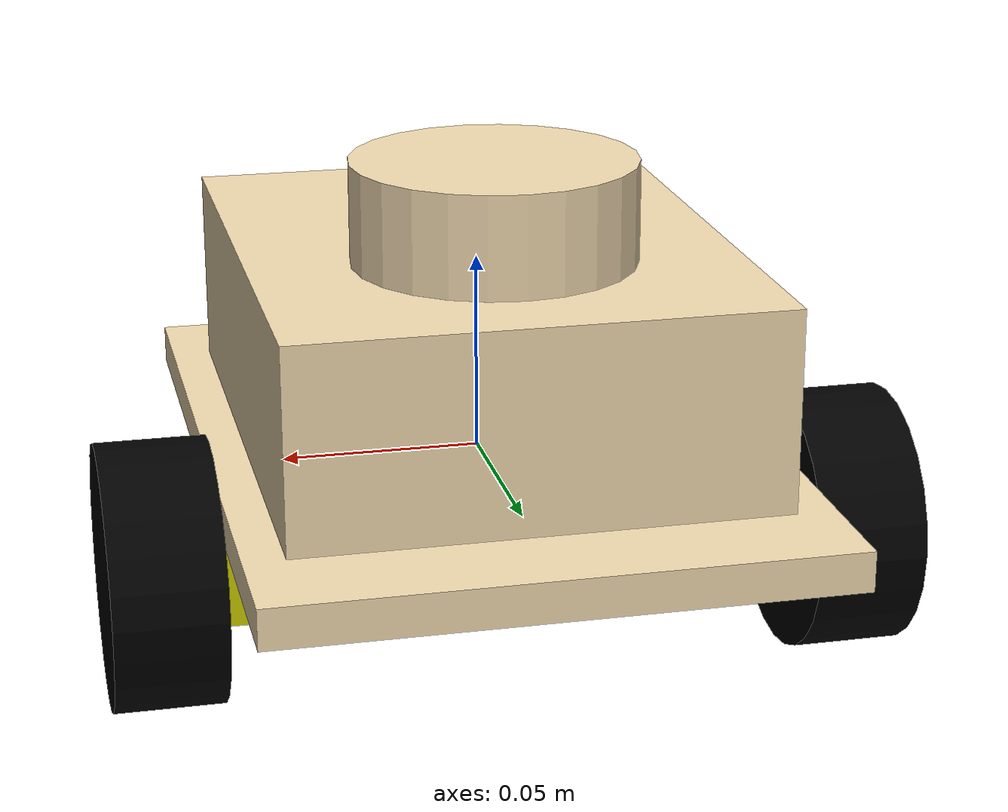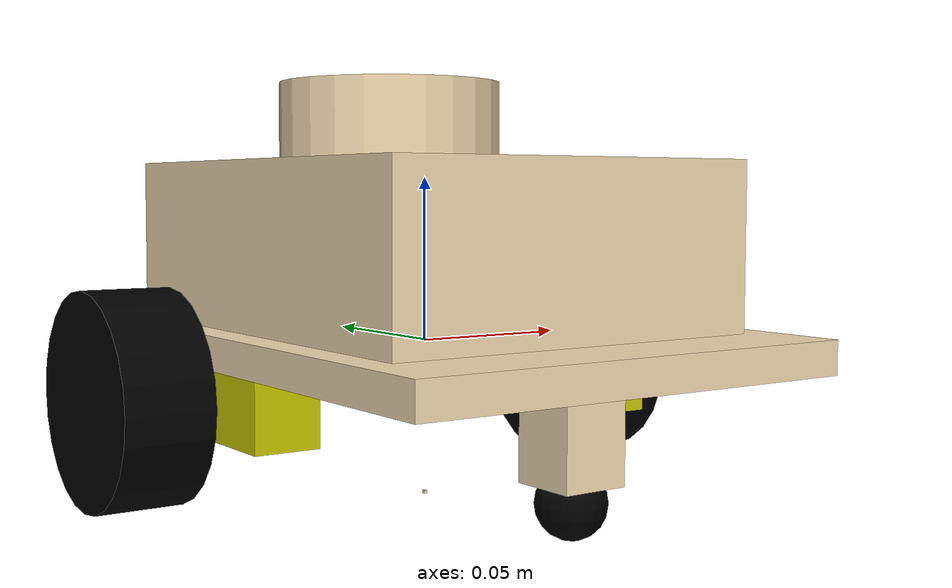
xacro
<?xml version="1.0"?>
<robot xmlns:xacro="http://www.ros.org/wiki/xacro" name="rover">

  <xacro:include filename="$(find rover)/urdf/colors.xacro"/>
  <xacro:include filename="$(find rover)/urdf/inertia.xacro"/>
  <xacro:include filename="$(find rover)/urdf/motor_wheel.xacro"/>
  <xacro:include filename="$(find rover)/urdf/caster_wheel.xacro"/>

  <xacro:property name="base_d" value="0.01"/>

  <xacro:property name="bl_m" value="0.1"/>
  <xacro:property name="bl_w" value="0.14"/>
  <xacro:property name="bl_h" value="0.20"/>
  <xacro:property name="bl_d" value="0.01"/>
  <link name="base_link">
    <visual>
      <geometry>
        <box size="${bl_w} ${bl_h} ${bl_d}"/>
      </geometry>
      <material name="tan"/>
    </visual>
    <collision>
      <geometry>
        <box size="${bl_w} ${bl_h} ${bl_d}"/>
      </geometry>
    </collision>
    <inertial>
      <mass value="${bl_m}"/>
      <xacro:cuboid_i m="${bl_m}" w="${bl_w}" h="${bl_h}" d="${bl_d}"/>
    </inertial>
  </link>

  <link name="base_footprint">
    <visual>
      <geometry>
        <box size="0.001 0.001 0.001"/>
      </geometry>
      <origin xyz="0 0 0" rpy="0 0 0"/>
      <material name="tan"/>
    </visual>
  </link>

  <joint name="base_to_footprint" type="fixed">
    <parent link="base_link"/>
    <child link="base_footprint"/>
    <origin xyz="0 0 ${-(0.5*base_d + 0.5*m_d + w_r)}"/>
  </joint>

  <xacro:property name="p_m" value="0.4"/>
  <xacro:property name="p_w" value="0.12"/>
  <xacro:property name="p_h" value="0.15"/>
  <xacro:property name="p_d" value="0.05"/>
  <link name="pi_link">
    <visual>
      <geometry>
        <box size="${p_w} ${p_h} ${p_d}"/>
      </geometry>
      <origin rpy="0 0 0" xyz="0 0 0"/>
      <material name="tan"/>
    </visual>
    <collision>
      <geometry>
        <box size="${p_w} ${p_h} ${p_d}"/>
      </geometry>
    </collision>
    <inertial>
      <mass value="${p_m}"/>
      <xacro:cuboid_i m="${p_m}" w="${p_w}" h="${p_h}" d="${p_d}"/>
    </inertial>
  </link>

  <joint name="base_to_pi" type="fixed">
    <parent link="base_link"/>
    <child link="pi_link"/>
    <origin xyz="0 0 0.03"/>
  </joint>

  <xacro:property name="l_m" value="0.2"/>
  <xacro:property name="l_l" value="0.03"/>
  <xacro:property name="l_r" value="0.035"/>
  <link name="laser_frame1">
    <visual>
      <geometry>
        <cylinder length="${l_l}" radius="${l_r}"/>
      </geometry>
      <origin rpy="0 0 0" xyz="0 0 0"/>
      <material name="tan"/>
    </visual>
    <collision>
      <geometry>
        <cylinder length="${l_l}" radius="${l_r}"/>
      </geometry>
    </collision>
    <inertial>
      <mass value="${l_m}"/>
      <xacro:cylinder_i m="${l_m}" l="${l_l}" r="${l_r}"/>
    </inertial>
  </link>

  <joint name="pi_to_lidar" type="fixed">
    <parent link="pi_link"/>
    <child link="laser_frame1"/>
    <origin xyz="0 0.02 0.035" rpy="0 0 ${pi/2}"/>
  </joint>

  <xacro:motorwheel prefix="left" reflect="-1"/>
  <xacro:motorwheel prefix="right" reflect="1"/>
  <xacro:casterwheel />

</robot>

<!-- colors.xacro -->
<robot xmlns:xacro="http://www.ros.org/wiki/xacro" name="colors">
  <material name="yellow">
    <color rgba="0.8 0.8 0 1"/>
  </material>

  <material name="black">
    <color rgba="0 0 0 1"/>
  </material>

  <material name="tan">
    <color rgba="${245/255} ${222/255} ${179/255} 1"/>
  </material>
</robot>

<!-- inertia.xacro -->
<robot xmlns:xacro="http://www.ros.org/wiki/xacro" name="inertia">
  <xacro:macro name="cuboid_i" params="m w h d">
    <inertia ixx="${(1/12)*m*(h*h+d*d)}" ixy="0.0" ixz="0.0" iyy="${(1/12)*m*(w*w+d*d)}" iyz="0.0" izz="${(1/12)*m*(w*w+h*h)}"/>
  </xacro:macro>

  <xacro:macro name="cylinder_i" params="m l r">
    <inertia ixx="${(1/12)*m*(3*r*r+l*l)}" ixy="0.0" ixz="0.0" iyy="${(1/12)*m*(3*r*r+l*l)}" iyz="0.0" izz="${(1/2)*m*r*r}"/>
  </xacro:macro>

  <xacro:macro name="sphere_i" params="m r">
    <inertia ixx="${(2/5)*m*r*r}" ixy="0.0" ixz="0.0" iyy="${(2/5)*m*r*r}" iyz="0.0" izz="${(2/5)*m*r*r}"/>
  </xacro:macro>
</robot>

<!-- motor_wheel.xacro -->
<robot xmlns:xacro="http://www.ros.org/wiki/xacro" name="motorwheel">
  <xacro:property name="pi" value="3.1415"/>

  <xacro:property name="m_m" value="0.02"/>
  <xacro:property name="m_w" value="0.02"/>
  <xacro:property name="m_h" value="0.065"/>
  <xacro:property name="m_d" value="0.02"/>
  <xacro:property name="w_m" value="0.01"/>
  <xacro:property name="w_r" value="0.0325"/>
  <xacro:property name="w_l" value="0.027"/>
  <xacro:macro name="motorwheel" params="prefix reflect">
    <link name="${prefix}_motor">
      <visual>
        <geometry>
          <box size="${m_w} ${m_h} ${m_d}"/>
        </geometry>
        <origin rpy="0 0 0" xyz="0 0 0"/>
      	<material name="yellow"/>
      </visual>
      <collision>
        <geometry>
          <box size="${m_w} ${m_h} ${m_d}"/>
        </geometry>
      </collision>
      <inertial>
        <mass value="${m_m}"/>
        <xacro:cuboid_i m="${m_m}" w="${m_w}" h="${m_h}" d="${m_d}"/>
      </inertial>
    </link>

    <joint name="base_to_${prefix}_motor" type="fixed">
      <parent link="base_link"/>
      <child link="${prefix}_motor"/>
      <origin xyz="${reflect*0.06} 0.01 -0.015"/>
    </joint>

    <link name="${prefix}_wheel">
      <visual>
        <geometry>
          <cylinder length="${w_l}" radius="${w_r}"/>
        </geometry>
        <origin xyz="0 0 0" rpy="0 ${pi/2} 0"/>
        <material name="black"/>
      </visual>
      <collision>
         <geometry>
           <cylinder length="${w_l}" radius="${w_r}"/>
         </geometry>
      </collision>
      <inertial>
        <mass value="${w_m}"/>
        <xacro:cylinder_i m="${w_m}" l="${w_l}" r="${w_r}"/>
      </inertial>
    </link>

    <joint name="${prefix}_motor_to_wheel" type="fixed">
      <parent link="${prefix}_motor"/>
      <child link="${prefix}_wheel"/>
      <axis xyz="1 0 0"/>
      <origin xyz="${reflect*0.025} 0.02 0"/>
    </joint>
  </xacro:macro>
</robot>

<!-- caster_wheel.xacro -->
<robot xmlns:xacro="http://www.ros.org/wiki/xacro" name="casterwheel">
  <xacro:property name="cs_m" value="0.05"/>
  <xacro:property name="cs_w" value="0.02"/>
  <xacro:property name="cs_h" value="0.02"/>
  <xacro:property name="cs_d" value="${w_r + 0.5*m_d - 1.5*cw_r}"/>
  <xacro:property name="cw_m" value="0.05"/>
  <xacro:property name="cw_r" value="0.01"/>
  <xacro:macro name="casterwheel" params="">
		<link name="caster_support">
			<visual>
				<geometry>
					<box size="${cs_w} ${cs_h} ${cs_d}"/>
				</geometry>
				<origin rpy="0 0 0" xyz="0 0 0"/>
				<material name="tan"/>
			</visual>
			<collision>
				<geometry>
					<box size="${cs_w} ${cs_h} ${cs_d}"/>
				</geometry>
			</collision>
			<inertial>
				<mass value="${cs_m}"/>
				<xacro:cuboid_i m="${cs_m}" w="${cs_w}" h="${cs_h}" d="${cs_d}"/>
			</inertial>
		</link>

		<joint name="base_to_caster_support" type="fixed">
			<parent link="base_link"/>
			<child link="caster_support"/>
			<origin xyz="0 -0.07 ${-(0.5*cs_d + 0.5*base_d)}"/>
		</joint>

		<link name="caster_wheel">
			<visual>
				<geometry>
					<sphere radius="${cw_r}"/>
				</geometry>
				<origin rpy="0 0 0" xyz="0 0 0"/>
				<material name="black"/>
			</visual>
			<collision>
				<geometry>
					<sphere radius="${cw_r}"/>
				</geometry>
			</collision>
			<inertial>
				<mass value="${cw_m}"/>
				<xacro:sphere_i m="${cw_m}" r="${cw_r}"/>
			</inertial>
		</link>

		<joint name="caster_support_to_wheel" type="fixed">
			<parent link="caster_support"/>
			<child link="caster_wheel"/>
			<origin xyz="0 0 ${-(0.5*cs_d + 0.5*cw_r)}"/>
		</joint>
	</xacro:macro>
</robot>
